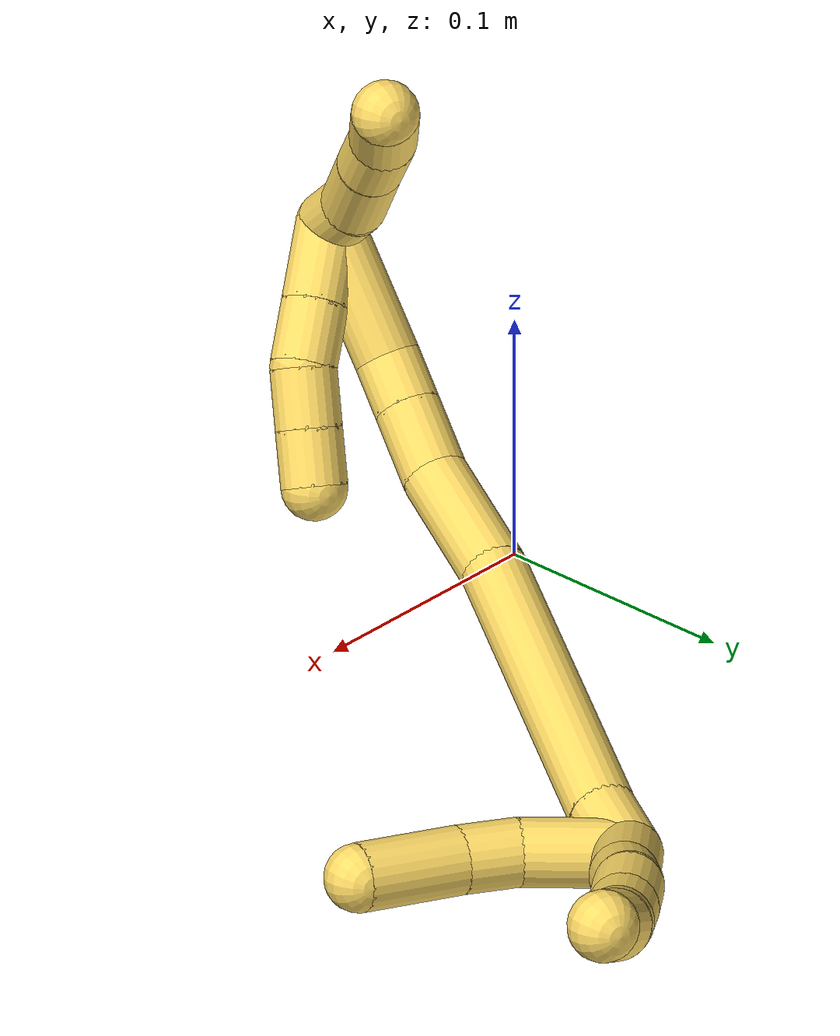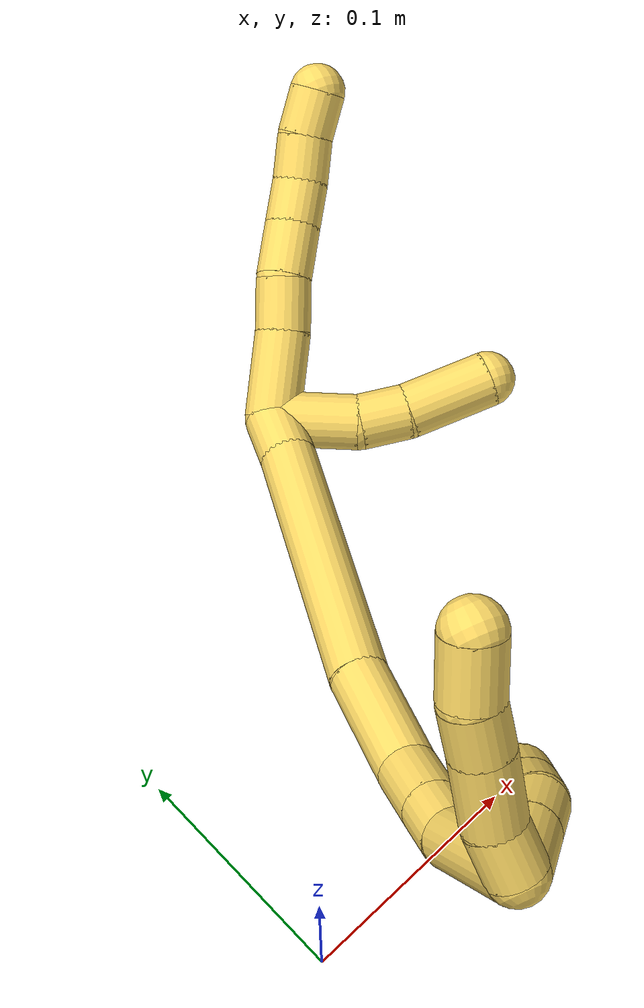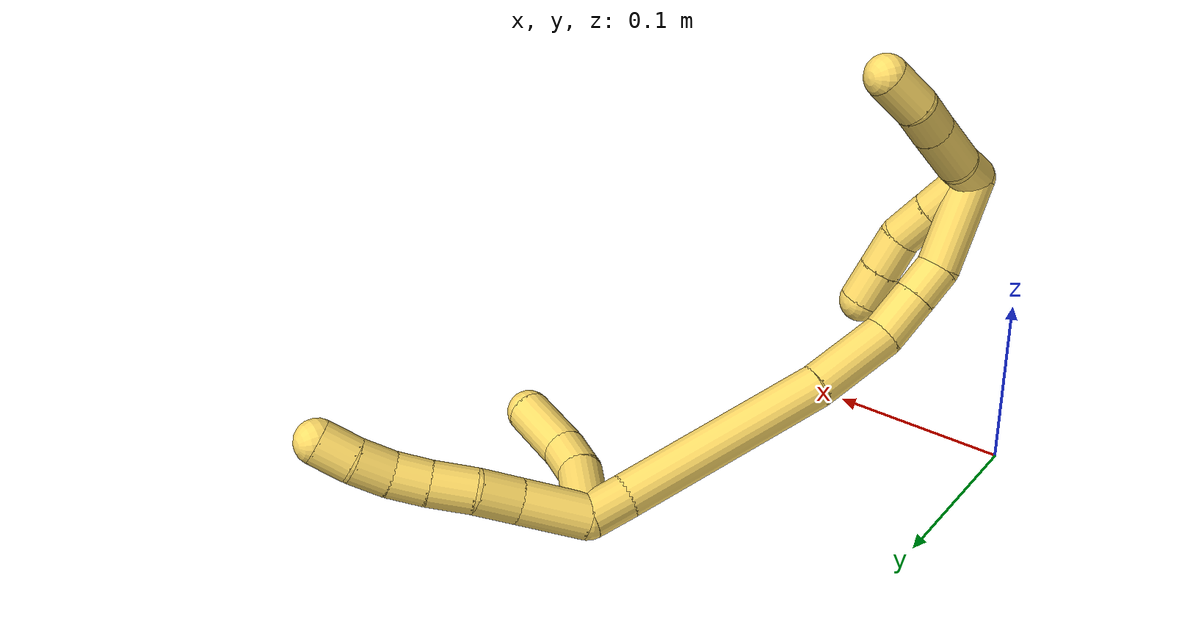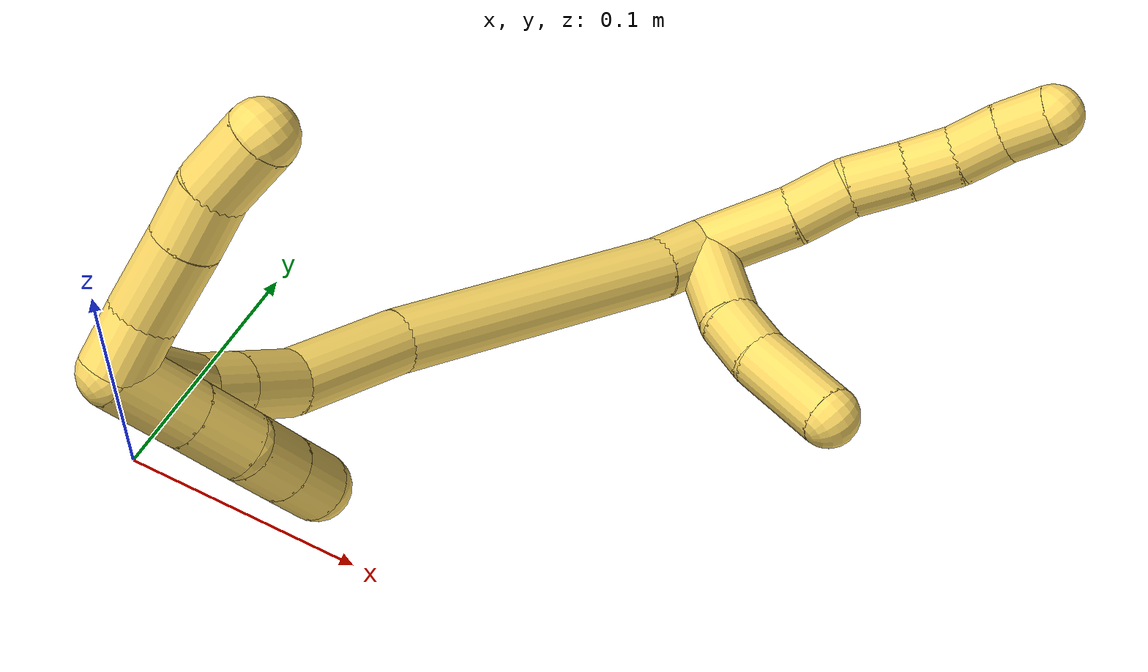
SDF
<sdf version="1.7">
 <world name="default">
  <model name="5">
   <static>0</static>
   <link name="5">
    <collision name="collision-cylinder-e_1_2_8">
     <pose>0.006579 -0.007897 0.016617 0.443655 0.343411 0.078183</pose>
     <geometry><cylinder><radius>0.0125</radius><length>0.039078</length></cylinder></geometry>
     <surface>
      <friction><ode><mu>1.16</mu><mu2>1.16</mu2><slip1>0</slip1><slip2>0</slip2></ode></friction>
      <contact><ode><kp>1e+06</kp><kd>1</kd><max_vel>0</max_vel><min_depth>0.001</min_depth></ode></contact>
     </surface>
    </collision>
    <visual name="visual-cylinder-e_1_2_8">
     <pose>0.006579 -0.007897 0.016617 0.443655 0.343411 0.078183</pose>
     <geometry><cylinder><radius>0.0125</radius><length>0.039078</length></cylinder></geometry>
     <material><ambient>1 0.858824 0.4 1</ambient></material>
    </visual>
    <collision name="collision-cylinder-e_2_8_9">
     <pose>0.015852 -0.020769 0.043942 0.434912 0.224362 0.049771</pose>
     <geometry><cylinder><radius>0.0125</radius><length>0.024221</length></cylinder></geometry>
     <surface>
      <friction><ode><mu>1.16</mu><mu2>1.16</mu2><slip1>0</slip1><slip2>0</slip2></ode></friction>
      <contact><ode><kp>1e+06</kp><kd>1</kd><max_vel>0</max_vel><min_depth>0.001</min_depth></ode></contact>
     </surface>
    </collision>
    <visual name="visual-cylinder-e_2_8_9">
     <pose>0.015852 -0.020769 0.043942 0.434912 0.224362 0.049771</pose>
     <geometry><cylinder><radius>0.0125</radius><length>0.024221</length></cylinder></geometry>
     <material><ambient>1 0.858824 0.4 1</ambient></material>
    </visual>
    <collision name="collision-cylinder-e_3_9_10">
     <pose>0.023726 -0.029932 0.064957 0.385948 0.435712 0.08646</pose>
     <geometry><cylinder><radius>0.0125</radius><length>0.024543</length></cylinder></geometry>
     <surface>
      <friction><ode><mu>1.16</mu><mu2>1.16</mu2><slip1>0</slip1><slip2>0</slip2></ode></friction>
      <contact><ode><kp>1e+06</kp><kd>1</kd><max_vel>0</max_vel><min_depth>0.001</min_depth></ode></contact>
     </surface>
    </collision>
    <visual name="visual-cylinder-e_3_9_10">
     <pose>0.023726 -0.029932 0.064957 0.385948 0.435712 0.08646</pose>
     <geometry><cylinder><radius>0.0125</radius><length>0.024543</length></cylinder></geometry>
     <material><ambient>1 0.858824 0.4 1</ambient></material>
    </visual>
    <collision name="collision-cylinder-e_4_10_11">
     <pose>0.032904 -0.03829 0.083727 0.457822 0.400925 0.094615</pose>
     <geometry><cylinder><radius>0.0125</radius><length>0.020495</length></cylinder></geometry>
     <surface>
      <friction><ode><mu>1.16</mu><mu2>1.16</mu2><slip1>0</slip1><slip2>0</slip2></ode></friction>
      <contact><ode><kp>1e+06</kp><kd>1</kd><max_vel>0</max_vel><min_depth>0.001</min_depth></ode></contact>
     </surface>
    </collision>
    <visual name="visual-cylinder-e_4_10_11">
     <pose>0.032904 -0.03829 0.083727 0.457822 0.400925 0.094615</pose>
     <geometry><cylinder><radius>0.0125</radius><length>0.020495</length></cylinder></geometry>
     <material><ambient>1 0.858824 0.4 1</ambient></material>
    </visual>
    <collision name="collision-cylinder-e_5_11_12">
     <pose>0.039365 -0.047948 0.100676 0.574058 0.238892 0.070824</pose>
     <geometry><cylinder><radius>0.0125</radius><length>0.020804</length></cylinder></geometry>
     <surface>
      <friction><ode><mu>1.16</mu><mu2>1.16</mu2><slip1>0</slip1><slip2>0</slip2></ode></friction>
      <contact><ode><kp>1e+06</kp><kd>1</kd><max_vel>0</max_vel><min_depth>0.001</min_depth></ode></contact>
     </surface>
    </collision>
    <visual name="visual-cylinder-e_5_11_12">
     <pose>0.039365 -0.047948 0.100676 0.574058 0.238892 0.070824</pose>
     <geometry><cylinder><radius>0.0125</radius><length>0.020804</length></cylinder></geometry>
     <material><ambient>1 0.858824 0.4 1</ambient></material>
    </visual>
    <collision name="collision-cylinder-e_6_12_6">
     <pose>0.045331 -0.059828 0.116622 0.708445 0.342742 0.127834</pose>
     <geometry><cylinder><radius>0.0125</radius><length>0.020859</length></cylinder></geometry>
     <surface>
      <friction><ode><mu>1.16</mu><mu2>1.16</mu2><slip1>0</slip1><slip2>0</slip2></ode></friction>
      <contact><ode><kp>1e+06</kp><kd>1</kd><max_vel>0</max_vel><min_depth>0.001</min_depth></ode></contact>
     </surface>
    </collision>
    <visual name="visual-cylinder-e_6_12_6">
     <pose>0.045331 -0.059828 0.116622 0.708445 0.342742 0.127834</pose>
     <geometry><cylinder><radius>0.0125</radius><length>0.020859</length></cylinder></geometry>
     <material><ambient>1 0.858824 0.4 1</ambient></material>
    </visual>
    <collision name="collision-cylinder-e_1_2_13">
     <pose>0.014362 -0.009641 -0.008705 2.30522 0.835551 1.56969</pose>
     <geometry><cylinder><radius>0.0125</radius><length>0.03873</length></cylinder></geometry>
     <surface>
      <friction><ode><mu>1.16</mu><mu2>1.16</mu2><slip1>0</slip1><slip2>0</slip2></ode></friction>
      <contact><ode><kp>1e+06</kp><kd>1</kd><max_vel>0</max_vel><min_depth>0.001</min_depth></ode></contact>
     </surface>
    </collision>
    <visual name="visual-cylinder-e_1_2_13">
     <pose>0.014362 -0.009641 -0.008705 2.30522 0.835551 1.56969</pose>
     <geometry><cylinder><radius>0.0125</radius><length>0.03873</length></cylinder></geometry>
     <material><ambient>1 0.858824 0.4 1</ambient></material>
    </visual>
    <collision name="collision-cylinder-e_2_13_14">
     <pose>0.038013 -0.024936 -0.01941 1.91079 0.997458 1.31284</pose>
     <geometry><cylinder><radius>0.0125</radius><length>0.022112</length></cylinder></geometry>
     <surface>
      <friction><ode><mu>1.16</mu><mu2>1.16</mu2><slip1>0</slip1><slip2>0</slip2></ode></friction>
      <contact><ode><kp>1e+06</kp><kd>1</kd><max_vel>0</max_vel><min_depth>0.001</min_depth></ode></contact>
     </surface>
    </collision>
    <visual name="visual-cylinder-e_2_13_14">
     <pose>0.038013 -0.024936 -0.01941 1.91079 0.997458 1.31284</pose>
     <geometry><cylinder><radius>0.0125</radius><length>0.022112</length></cylinder></geometry>
     <material><ambient>1 0.858824 0.4 1</ambient></material>
    </visual>
    <collision name="collision-cylinder-e_3_14_5">
     <pose>0.063778 -0.041157 -0.02182 1.60957 1.00021 1.03319</pose>
     <geometry><cylinder><radius>0.0125</radius><length>0.039158</length></cylinder></geometry>
     <surface>
      <friction><ode><mu>1.16</mu><mu2>1.16</mu2><slip1>0</slip1><slip2>0</slip2></ode></friction>
      <contact><ode><kp>1e+06</kp><kd>1</kd><max_vel>0</max_vel><min_depth>0.001</min_depth></ode></contact>
     </surface>
    </collision>
    <visual name="visual-cylinder-e_3_14_5">
     <pose>0.063778 -0.041157 -0.02182 1.60957 1.00021 1.03319</pose>
     <geometry><cylinder><radius>0.0125</radius><length>0.039158</length></cylinder></geometry>
     <material><ambient>1 0.858824 0.4 1</ambient></material>
    </visual>
    <collision name="collision-cylinder-e_1_2_15">
     <pose>-0.002846 -0.003239 -0.010925 2.85339 -0.24475 -1.40618</pose>
     <geometry><cylinder><radius>0.0125</radius><length>0.02349</length></cylinder></geometry>
     <surface>
      <friction><ode><mu>1.16</mu><mu2>1.16</mu2><slip1>0</slip1><slip2>0</slip2></ode></friction>
      <contact><ode><kp>1e+06</kp><kd>1</kd><max_vel>0</max_vel><min_depth>0.001</min_depth></ode></contact>
     </surface>
    </collision>
    <visual name="visual-cylinder-e_1_2_15">
     <pose>-0.002846 -0.003239 -0.010925 2.85339 -0.24475 -1.40618</pose>
     <geometry><cylinder><radius>0.0125</radius><length>0.02349</length></cylinder></geometry>
     <material><ambient>1 0.858824 0.4 1</ambient></material>
    </visual>
    <collision name="collision-cylinder-e_2_15_16">
     <pose>-0.026225 -0.025959 -0.076352 2.79831 -0.340904 -1.56369</pose>
     <geometry><cylinder><radius>0.0125</radius><length>0.122826</length></cylinder></geometry>
     <surface>
      <friction><ode><mu>1.16</mu><mu2>1.16</mu2><slip1>0</slip1><slip2>0</slip2></ode></friction>
      <contact><ode><kp>1e+06</kp><kd>1</kd><max_vel>0</max_vel><min_depth>0.001</min_depth></ode></contact>
     </surface>
    </collision>
    <visual name="visual-cylinder-e_2_15_16">
     <pose>-0.026225 -0.025959 -0.076352 2.79831 -0.340904 -1.56369</pose>
     <geometry><cylinder><radius>0.0125</radius><length>0.122826</length></cylinder></geometry>
     <material><ambient>1 0.858824 0.4 1</ambient></material>
    </visual>
    <collision name="collision-cylinder-e_3_16_17">
     <pose>-0.052472 -0.055629 -0.152861 2.70798 -0.231418 -0.971065</pose>
     <geometry><cylinder><radius>0.0125</radius><length>0.049831</length></cylinder></geometry>
     <surface>
      <friction><ode><mu>1.16</mu><mu2>1.16</mu2><slip1>0</slip1><slip2>0</slip2></ode></friction>
      <contact><ode><kp>1e+06</kp><kd>1</kd><max_vel>0</max_vel><min_depth>0.001</min_depth></ode></contact>
     </surface>
    </collision>
    <visual name="visual-cylinder-e_3_16_17">
     <pose>-0.052472 -0.055629 -0.152861 2.70798 -0.231418 -0.971065</pose>
     <geometry><cylinder><radius>0.0125</radius><length>0.049831</length></cylinder></geometry>
     <material><ambient>1 0.858824 0.4 1</ambient></material>
    </visual>
    <collision name="collision-cylinder-e_4_17_18">
     <pose>-0.063163 -0.075036 -0.184337 2.36962 -0.360165 -0.842382</pose>
     <geometry><cylinder><radius>0.0125</radius><length>0.028239</length></cylinder></geometry>
     <surface>
      <friction><ode><mu>1.16</mu><mu2>1.16</mu2><slip1>0</slip1><slip2>0</slip2></ode></friction>
      <contact><ode><kp>1e+06</kp><kd>1</kd><max_vel>0</max_vel><min_depth>0.001</min_depth></ode></contact>
     </surface>
    </collision>
    <visual name="visual-cylinder-e_4_17_18">
     <pose>-0.063163 -0.075036 -0.184337 2.36962 -0.360165 -0.842382</pose>
     <geometry><cylinder><radius>0.0125</radius><length>0.028239</length></cylinder></geometry>
     <material><ambient>1 0.858824 0.4 1</ambient></material>
    </visual>
    <collision name="collision-cylinder-e_5_18_19">
     <pose>-0.071841 -0.091235 -0.200808 2.35773 -0.358225 -0.825748</pose>
     <geometry><cylinder><radius>0.0125</radius><length>0.021118</length></cylinder></geometry>
     <surface>
      <friction><ode><mu>1.16</mu><mu2>1.16</mu2><slip1>0</slip1><slip2>0</slip2></ode></friction>
      <contact><ode><kp>1e+06</kp><kd>1</kd><max_vel>0</max_vel><min_depth>0.001</min_depth></ode></contact>
     </surface>
    </collision>
    <visual name="visual-cylinder-e_5_18_19">
     <pose>-0.071841 -0.091235 -0.200808 2.35773 -0.358225 -0.825748</pose>
     <geometry><cylinder><radius>0.0125</radius><length>0.021118</length></cylinder></geometry>
     <material><ambient>1 0.858824 0.4 1</ambient></material>
    </visual>
    <collision name="collision-cylinder-e_6_19_1">
     <pose>-0.083249 -0.121845 -0.218979 2.01233 -0.28671 -0.448112</pose>
     <geometry><cylinder><radius>0.0125</radius><length>0.054494</length></cylinder></geometry>
     <surface>
      <friction><ode><mu>1.16</mu><mu2>1.16</mu2><slip1>0</slip1><slip2>0</slip2></ode></friction>
      <contact><ode><kp>1e+06</kp><kd>1</kd><max_vel>0</max_vel><min_depth>0.001</min_depth></ode></contact>
     </surface>
    </collision>
    <visual name="visual-cylinder-e_6_19_1">
     <pose>-0.083249 -0.121845 -0.218979 2.01233 -0.28671 -0.448112</pose>
     <geometry><cylinder><radius>0.0125</radius><length>0.054494</length></cylinder></geometry>
     <material><ambient>1 0.858824 0.4 1</ambient></material>
    </visual>
    <collision name="collision-cylinder-e_1_1_20">
     <pose>-0.094593 -0.150171 -0.221178 0.482412 -0.345014 -0.085671</pose>
     <geometry><cylinder><radius>0.0125</radius><length>0.021518</length></cylinder></geometry>
     <surface>
      <friction><ode><mu>1.16</mu><mu2>1.16</mu2><slip1>0</slip1><slip2>0</slip2></ode></friction>
      <contact><ode><kp>1e+06</kp><kd>1</kd><max_vel>0</max_vel><min_depth>0.001</min_depth></ode></contact>
     </surface>
    </collision>
    <visual name="visual-cylinder-e_1_1_20">
     <pose>-0.094593 -0.150171 -0.221178 0.482412 -0.345014 -0.085671</pose>
     <geometry><cylinder><radius>0.0125</radius><length>0.021518</length></cylinder></geometry>
     <material><ambient>1 0.858824 0.4 1</ambient></material>
    </visual>
    <collision name="collision-cylinder-e_2_20_21">
     <pose>-0.102016 -0.164956 -0.200844 0.725983 -0.244062 -0.093096</pose>
     <geometry><cylinder><radius>0.0125</radius><length>0.03132</length></cylinder></geometry>
     <surface>
      <friction><ode><mu>1.16</mu><mu2>1.16</mu2><slip1>0</slip1><slip2>0</slip2></ode></friction>
      <contact><ode><kp>1e+06</kp><kd>1</kd><max_vel>0</max_vel><min_depth>0.001</min_depth></ode></contact>
     </surface>
    </collision>
    <visual name="visual-cylinder-e_2_20_21">
     <pose>-0.102016 -0.164956 -0.200844 0.725983 -0.244062 -0.093096</pose>
     <geometry><cylinder><radius>0.0125</radius><length>0.03132</length></cylinder></geometry>
     <material><ambient>1 0.858824 0.4 1</ambient></material>
    </visual>
    <collision name="collision-cylinder-e_3_21_22">
     <pose>-0.108705 -0.181763 -0.181836 0.721057 -0.277988 -0.105386</pose>
     <geometry><cylinder><radius>0.0125</radius><length>0.021165</length></cylinder></geometry>
     <surface>
      <friction><ode><mu>1.16</mu><mu2>1.16</mu2><slip1>0</slip1><slip2>0</slip2></ode></friction>
      <contact><ode><kp>1e+06</kp><kd>1</kd><max_vel>0</max_vel><min_depth>0.001</min_depth></ode></contact>
     </surface>
    </collision>
    <visual name="visual-cylinder-e_3_21_22">
     <pose>-0.108705 -0.181763 -0.181836 0.721057 -0.277988 -0.105386</pose>
     <geometry><cylinder><radius>0.0125</radius><length>0.021165</length></cylinder></geometry>
     <material><ambient>1 0.858824 0.4 1</ambient></material>
    </visual>
    <collision name="collision-cylinder-e_4_22_4">
     <pose>-0.112144 -0.197337 -0.164693 0.750368 -0.041208 -0.016231</pose>
     <geometry><cylinder><radius>0.0125</radius><length>0.025996</length></cylinder></geometry>
     <surface>
      <friction><ode><mu>1.16</mu><mu2>1.16</mu2><slip1>0</slip1><slip2>0</slip2></ode></friction>
      <contact><ode><kp>1e+06</kp><kd>1</kd><max_vel>0</max_vel><min_depth>0.001</min_depth></ode></contact>
     </surface>
    </collision>
    <visual name="visual-cylinder-e_4_22_4">
     <pose>-0.112144 -0.197337 -0.164693 0.750368 -0.041208 -0.016231</pose>
     <geometry><cylinder><radius>0.0125</radius><length>0.025996</length></cylinder></geometry>
     <material><ambient>1 0.858824 0.4 1</ambient></material>
    </visual>
    <collision name="collision-cylinder-e_1_1_23">
     <pose>-0.078665 -0.137588 -0.224195 -0.924219 0.893661 -0.468546</pose>
     <geometry><cylinder><radius>0.0125</radius><length>0.031536</length></cylinder></geometry>
     <surface>
      <friction><ode><mu>1.16</mu><mu2>1.16</mu2><slip1>0</slip1><slip2>0</slip2></ode></friction>
      <contact><ode><kp>1e+06</kp><kd>1</kd><max_vel>0</max_vel><min_depth>0.001</min_depth></ode></contact>
     </surface>
    </collision>
    <visual name="visual-cylinder-e_1_1_23">
     <pose>-0.078665 -0.137588 -0.224195 -0.924219 0.893661 -0.468546</pose>
     <geometry><cylinder><radius>0.0125</radius><length>0.031536</length></cylinder></geometry>
     <material><ambient>1 0.858824 0.4 1</ambient></material>
    </visual>
    <collision name="collision-cylinder-e_2_23_24">
     <pose>-0.056958 -0.123652 -0.213755 -0.932566 0.89616 -0.474738</pose>
     <geometry><cylinder><radius>0.0125</radius><length>0.024121</length></cylinder></geometry>
     <surface>
      <friction><ode><mu>1.16</mu><mu2>1.16</mu2><slip1>0</slip1><slip2>0</slip2></ode></friction>
      <contact><ode><kp>1e+06</kp><kd>1</kd><max_vel>0</max_vel><min_depth>0.001</min_depth></ode></contact>
     </surface>
    </collision>
    <visual name="visual-cylinder-e_2_23_24">
     <pose>-0.056958 -0.123652 -0.213755 -0.932566 0.89616 -0.474738</pose>
     <geometry><cylinder><radius>0.0125</radius><length>0.024121</length></cylinder></geometry>
     <material><ambient>1 0.858824 0.4 1</ambient></material>
    </visual>
    <collision name="collision-cylinder-e_3_24_25">
     <pose>-0.041071 -0.109018 -0.205474 -1.15472 0.603431 -0.400032</pose>
     <geometry><cylinder><radius>0.0125</radius><length>0.022796</length></cylinder></geometry>
     <surface>
      <friction><ode><mu>1.16</mu><mu2>1.16</mu2><slip1>0</slip1><slip2>0</slip2></ode></friction>
      <contact><ode><kp>1e+06</kp><kd>1</kd><max_vel>0</max_vel><min_depth>0.001</min_depth></ode></contact>
     </surface>
    </collision>
    <visual name="visual-cylinder-e_3_24_25">
     <pose>-0.041071 -0.109018 -0.205474 -1.15472 0.603431 -0.400032</pose>
     <geometry><cylinder><radius>0.0125</radius><length>0.022796</length></cylinder></geometry>
     <material><ambient>1 0.858824 0.4 1</ambient></material>
    </visual>
    <collision name="collision-cylinder-e_4_25_3">
     <pose>-0.028511 -0.092332 -0.198031 -1.14753 0.600999 -0.395323</pose>
     <geometry><cylinder><radius>0.0125</radius><length>0.021547</length></cylinder></geometry>
     <surface>
      <friction><ode><mu>1.16</mu><mu2>1.16</mu2><slip1>0</slip1><slip2>0</slip2></ode></friction>
      <contact><ode><kp>1e+06</kp><kd>1</kd><max_vel>0</max_vel><min_depth>0.001</min_depth></ode></contact>
     </surface>
    </collision>
    <visual name="visual-cylinder-e_4_25_3">
     <pose>-0.028511 -0.092332 -0.198031 -1.14753 0.600999 -0.395323</pose>
     <geometry><cylinder><radius>0.0125</radius><length>0.021547</length></cylinder></geometry>
     <material><ambient>1 0.858824 0.4 1</ambient></material>
    </visual>
    <collision name="collision-sphere-3">
     <pose>-0.022419 -0.08423 -0.194381 0 -0 0</pose>
     <geometry><sphere><radius>0.0125</radius></sphere></geometry>
     <surface>
      <friction><ode><mu>1.16</mu><mu2>1.16</mu2><slip1>0</slip1><slip2>0</slip2></ode></friction>
      <contact><ode><kp>1e+06</kp><kd>1</kd><max_vel>0</max_vel><min_depth>0.001</min_depth></ode></contact>
     </surface>
    </collision>
    <visual name="visual-sphere-3">
     <pose>-0.022419 -0.08423 -0.194381 0 -0 0</pose>
     <geometry><sphere><radius>0.0125</radius></sphere></geometry>
     <material><ambient>1 0.858824 0.4 1</ambient></material>
    </visual>
    <collision name="collision-sphere-25">
     <pose>-0.034603 -0.100433 -0.201681 0 -0 0</pose>
     <geometry><sphere><radius>0.0125</radius></sphere></geometry>
     <surface>
      <friction><ode><mu>1.16</mu><mu2>1.16</mu2><slip1>0</slip1><slip2>0</slip2></ode></friction>
      <contact><ode><kp>1e+06</kp><kd>1</kd><max_vel>0</max_vel><min_depth>0.001</min_depth></ode></contact>
     </surface>
    </collision>
    <visual name="visual-sphere-25">
     <pose>-0.034603 -0.100433 -0.201681 0 -0 0</pose>
     <geometry><sphere><radius>0.0125</radius></sphere></geometry>
     <material><ambient>1 0.858824 0.4 1</ambient></material>
    </visual>
    <collision name="collision-sphere-24">
     <pose>-0.047539 -0.117602 -0.209267 0 -0 0</pose>
     <geometry><sphere><radius>0.0125</radius></sphere></geometry>
     <surface>
      <friction><ode><mu>1.16</mu><mu2>1.16</mu2><slip1>0</slip1><slip2>0</slip2></ode></friction>
      <contact><ode><kp>1e+06</kp><kd>1</kd><max_vel>0</max_vel><min_depth>0.001</min_depth></ode></contact>
     </surface>
    </collision>
    <visual name="visual-sphere-24">
     <pose>-0.047539 -0.117602 -0.209267 0 -0 0</pose>
     <geometry><sphere><radius>0.0125</radius></sphere></geometry>
     <material><ambient>1 0.858824 0.4 1</ambient></material>
    </visual>
    <collision name="collision-sphere-23">
     <pose>-0.066376 -0.129703 -0.218243 0 -0 0</pose>
     <geometry><sphere><radius>0.0125</radius></sphere></geometry>
     <surface>
      <friction><ode><mu>1.16</mu><mu2>1.16</mu2><slip1>0</slip1><slip2>0</slip2></ode></friction>
      <contact><ode><kp>1e+06</kp><kd>1</kd><max_vel>0</max_vel><min_depth>0.001</min_depth></ode></contact>
     </surface>
    </collision>
    <visual name="visual-sphere-23">
     <pose>-0.066376 -0.129703 -0.218243 0 -0 0</pose>
     <geometry><sphere><radius>0.0125</radius></sphere></geometry>
     <material><ambient>1 0.858824 0.4 1</ambient></material>
    </visual>
    <collision name="collision-sphere-4">
     <pose>-0.11268 -0.206193 -0.155194 0 -0 0</pose>
     <geometry><sphere><radius>0.0125</radius></sphere></geometry>
     <surface>
      <friction><ode><mu>1.16</mu><mu2>1.16</mu2><slip1>0</slip1><slip2>0</slip2></ode></friction>
      <contact><ode><kp>1e+06</kp><kd>1</kd><max_vel>0</max_vel><min_depth>0.001</min_depth></ode></contact>
     </surface>
    </collision>
    <visual name="visual-sphere-4">
     <pose>-0.11268 -0.206193 -0.155194 0 -0 0</pose>
     <geometry><sphere><radius>0.0125</radius></sphere></geometry>
     <material><ambient>1 0.858824 0.4 1</ambient></material>
    </visual>
    <collision name="collision-sphere-22">
     <pose>-0.111609 -0.188481 -0.174193 0 -0 0</pose>
     <geometry><sphere><radius>0.0125</radius></sphere></geometry>
     <surface>
      <friction><ode><mu>1.16</mu><mu2>1.16</mu2><slip1>0</slip1><slip2>0</slip2></ode></friction>
      <contact><ode><kp>1e+06</kp><kd>1</kd><max_vel>0</max_vel><min_depth>0.001</min_depth></ode></contact>
     </surface>
    </collision>
    <visual name="visual-sphere-22">
     <pose>-0.111609 -0.188481 -0.174193 0 -0 0</pose>
     <geometry><sphere><radius>0.0125</radius></sphere></geometry>
     <material><ambient>1 0.858824 0.4 1</ambient></material>
    </visual>
    <collision name="collision-sphere-21">
     <pose>-0.1058 -0.175044 -0.18948 0 -0 0</pose>
     <geometry><sphere><radius>0.0125</radius></sphere></geometry>
     <surface>
      <friction><ode><mu>1.16</mu><mu2>1.16</mu2><slip1>0</slip1><slip2>0</slip2></ode></friction>
      <contact><ode><kp>1e+06</kp><kd>1</kd><max_vel>0</max_vel><min_depth>0.001</min_depth></ode></contact>
     </surface>
    </collision>
    <visual name="visual-sphere-21">
     <pose>-0.1058 -0.175044 -0.18948 0 -0 0</pose>
     <geometry><sphere><radius>0.0125</radius></sphere></geometry>
     <material><ambient>1 0.858824 0.4 1</ambient></material>
    </visual>
    <collision name="collision-sphere-20">
     <pose>-0.098232 -0.154868 -0.212208 0 -0 0</pose>
     <geometry><sphere><radius>0.0125</radius></sphere></geometry>
     <surface>
      <friction><ode><mu>1.16</mu><mu2>1.16</mu2><slip1>0</slip1><slip2>0</slip2></ode></friction>
      <contact><ode><kp>1e+06</kp><kd>1</kd><max_vel>0</max_vel><min_depth>0.001</min_depth></ode></contact>
     </surface>
    </collision>
    <visual name="visual-sphere-20">
     <pose>-0.098232 -0.154868 -0.212208 0 -0 0</pose>
     <geometry><sphere><radius>0.0125</radius></sphere></geometry>
     <material><ambient>1 0.858824 0.4 1</ambient></material>
    </visual>
    <collision name="collision-sphere-12">
     <pose>0.041826 -0.053437 0.109163 0 -0 0</pose>
     <geometry><sphere><radius>0.0125</radius></sphere></geometry>
     <surface>
      <friction><ode><mu>1.16</mu><mu2>1.16</mu2><slip1>0</slip1><slip2>0</slip2></ode></friction>
      <contact><ode><kp>1e+06</kp><kd>1</kd><max_vel>0</max_vel><min_depth>0.001</min_depth></ode></contact>
     </surface>
    </collision>
    <visual name="visual-sphere-12">
     <pose>0.041826 -0.053437 0.109163 0 -0 0</pose>
     <geometry><sphere><radius>0.0125</radius></sphere></geometry>
     <material><ambient>1 0.858824 0.4 1</ambient></material>
    </visual>
    <collision name="collision-sphere-11">
     <pose>0.036904 -0.04246 0.09219 0 -0 0</pose>
     <geometry><sphere><radius>0.0125</radius></sphere></geometry>
     <surface>
      <friction><ode><mu>1.16</mu><mu2>1.16</mu2><slip1>0</slip1><slip2>0</slip2></ode></friction>
      <contact><ode><kp>1e+06</kp><kd>1</kd><max_vel>0</max_vel><min_depth>0.001</min_depth></ode></contact>
     </surface>
    </collision>
    <visual name="visual-sphere-11">
     <pose>0.036904 -0.04246 0.09219 0 -0 0</pose>
     <geometry><sphere><radius>0.0125</radius></sphere></geometry>
     <material><ambient>1 0.858824 0.4 1</ambient></material>
    </visual>
    <collision name="collision-sphere-10">
     <pose>0.028905 -0.03412 0.075263 0 -0 0</pose>
     <geometry><sphere><radius>0.0125</radius></sphere></geometry>
     <surface>
      <friction><ode><mu>1.16</mu><mu2>1.16</mu2><slip1>0</slip1><slip2>0</slip2></ode></friction>
      <contact><ode><kp>1e+06</kp><kd>1</kd><max_vel>0</max_vel><min_depth>0.001</min_depth></ode></contact>
     </surface>
    </collision>
    <visual name="visual-sphere-10">
     <pose>0.028905 -0.03412 0.075263 0 -0 0</pose>
     <geometry><sphere><radius>0.0125</radius></sphere></geometry>
     <material><ambient>1 0.858824 0.4 1</ambient></material>
    </visual>
    <collision name="collision-sphere-9">
     <pose>0.018546 -0.025744 0.05465 0 -0 0</pose>
     <geometry><sphere><radius>0.0125</radius></sphere></geometry>
     <surface>
      <friction><ode><mu>1.16</mu><mu2>1.16</mu2><slip1>0</slip1><slip2>0</slip2></ode></friction>
      <contact><ode><kp>1e+06</kp><kd>1</kd><max_vel>0</max_vel><min_depth>0.001</min_depth></ode></contact>
     </surface>
    </collision>
    <visual name="visual-sphere-9">
     <pose>0.018546 -0.025744 0.05465 0 -0 0</pose>
     <geometry><sphere><radius>0.0125</radius></sphere></geometry>
     <material><ambient>1 0.858824 0.4 1</ambient></material>
    </visual>
    <collision name="collision-sphere-2">
     <geometry><sphere><radius>0.0125</radius></sphere></geometry>
     <surface>
      <friction><ode><mu>1.16</mu><mu2>1.16</mu2><slip1>0</slip1><slip2>0</slip2></ode></friction>
      <contact><ode><kp>1e+06</kp><kd>1</kd><max_vel>0</max_vel><min_depth>0.001</min_depth></ode></contact>
     </surface>
    </collision>
    <visual name="visual-sphere-2">
     <geometry><sphere><radius>0.0125</radius></sphere></geometry>
     <material><ambient>1 0.858824 0.4 1</ambient></material>
    </visual>
    <collision name="collision-sphere-19">
     <pose>-0.075544 -0.098216 -0.207811 0 -0 0</pose>
     <geometry><sphere><radius>0.0125</radius></sphere></geometry>
     <surface>
      <friction><ode><mu>1.16</mu><mu2>1.16</mu2><slip1>0</slip1><slip2>0</slip2></ode></friction>
      <contact><ode><kp>1e+06</kp><kd>1</kd><max_vel>0</max_vel><min_depth>0.001</min_depth></ode></contact>
     </surface>
    </collision>
    <visual name="visual-sphere-19">
     <pose>-0.075544 -0.098216 -0.207811 0 -0 0</pose>
     <geometry><sphere><radius>0.0125</radius></sphere></geometry>
     <material><ambient>1 0.858824 0.4 1</ambient></material>
    </visual>
    <collision name="collision-sphere-8">
     <pose>0.013157 -0.015794 0.033234 0 -0 0</pose>
     <geometry><sphere><radius>0.0125</radius></sphere></geometry>
     <surface>
      <friction><ode><mu>1.16</mu><mu2>1.16</mu2><slip1>0</slip1><slip2>0</slip2></ode></friction>
      <contact><ode><kp>1e+06</kp><kd>1</kd><max_vel>0</max_vel><min_depth>0.001</min_depth></ode></contact>
     </surface>
    </collision>
    <visual name="visual-sphere-8">
     <pose>0.013157 -0.015794 0.033234 0 -0 0</pose>
     <geometry><sphere><radius>0.0125</radius></sphere></geometry>
     <material><ambient>1 0.858824 0.4 1</ambient></material>
    </visual>
    <collision name="collision-sphere-6">
     <pose>0.048836 -0.066219 0.124081 0 -0 0</pose>
     <geometry><sphere><radius>0.0125</radius></sphere></geometry>
     <surface>
      <friction><ode><mu>1.16</mu><mu2>1.16</mu2><slip1>0</slip1><slip2>0</slip2></ode></friction>
      <contact><ode><kp>1e+06</kp><kd>1</kd><max_vel>0</max_vel><min_depth>0.001</min_depth></ode></contact>
     </surface>
    </collision>
    <visual name="visual-sphere-6">
     <pose>0.048836 -0.066219 0.124081 0 -0 0</pose>
     <geometry><sphere><radius>0.0125</radius></sphere></geometry>
     <material><ambient>1 0.858824 0.4 1</ambient></material>
    </visual>
    <collision name="collision-sphere-13">
     <pose>0.028725 -0.019282 -0.01741 0 -0 0</pose>
     <geometry><sphere><radius>0.0125</radius></sphere></geometry>
     <surface>
      <friction><ode><mu>1.16</mu><mu2>1.16</mu2><slip1>0</slip1><slip2>0</slip2></ode></friction>
      <contact><ode><kp>1e+06</kp><kd>1</kd><max_vel>0</max_vel><min_depth>0.001</min_depth></ode></contact>
     </surface>
    </collision>
    <visual name="visual-sphere-13">
     <pose>0.028725 -0.019282 -0.01741 0 -0 0</pose>
     <geometry><sphere><radius>0.0125</radius></sphere></geometry>
     <material><ambient>1 0.858824 0.4 1</ambient></material>
    </visual>
    <collision name="collision-sphere-14">
     <pose>0.047301 -0.03059 -0.02141 0 -0 0</pose>
     <geometry><sphere><radius>0.0125</radius></sphere></geometry>
     <surface>
      <friction><ode><mu>1.16</mu><mu2>1.16</mu2><slip1>0</slip1><slip2>0</slip2></ode></friction>
      <contact><ode><kp>1e+06</kp><kd>1</kd><max_vel>0</max_vel><min_depth>0.001</min_depth></ode></contact>
     </surface>
    </collision>
    <visual name="visual-sphere-14">
     <pose>0.047301 -0.03059 -0.02141 0 -0 0</pose>
     <geometry><sphere><radius>0.0125</radius></sphere></geometry>
     <material><ambient>1 0.858824 0.4 1</ambient></material>
    </visual>
    <collision name="collision-sphere-5">
     <pose>0.080256 -0.051724 -0.02223 0 -0 0</pose>
     <geometry><sphere><radius>0.0125</radius></sphere></geometry>
     <surface>
      <friction><ode><mu>1.16</mu><mu2>1.16</mu2><slip1>0</slip1><slip2>0</slip2></ode></friction>
      <contact><ode><kp>1e+06</kp><kd>1</kd><max_vel>0</max_vel><min_depth>0.001</min_depth></ode></contact>
     </surface>
    </collision>
    <visual name="visual-sphere-5">
     <pose>0.080256 -0.051724 -0.02223 0 -0 0</pose>
     <geometry><sphere><radius>0.0125</radius></sphere></geometry>
     <material><ambient>1 0.858824 0.4 1</ambient></material>
    </visual>
    <collision name="collision-sphere-15">
     <pose>-0.005692 -0.006478 -0.02185 0 -0 0</pose>
     <geometry><sphere><radius>0.0125</radius></sphere></geometry>
     <surface>
      <friction><ode><mu>1.16</mu><mu2>1.16</mu2><slip1>0</slip1><slip2>0</slip2></ode></friction>
      <contact><ode><kp>1e+06</kp><kd>1</kd><max_vel>0</max_vel><min_depth>0.001</min_depth></ode></contact>
     </surface>
    </collision>
    <visual name="visual-sphere-15">
     <pose>-0.005692 -0.006478 -0.02185 0 -0 0</pose>
     <geometry><sphere><radius>0.0125</radius></sphere></geometry>
     <material><ambient>1 0.858824 0.4 1</ambient></material>
    </visual>
    <collision name="collision-sphere-16">
     <pose>-0.046758 -0.04544 -0.130854 0 -0 0</pose>
     <geometry><sphere><radius>0.0125</radius></sphere></geometry>
     <surface>
      <friction><ode><mu>1.16</mu><mu2>1.16</mu2><slip1>0</slip1><slip2>0</slip2></ode></friction>
      <contact><ode><kp>1e+06</kp><kd>1</kd><max_vel>0</max_vel><min_depth>0.001</min_depth></ode></contact>
     </surface>
    </collision>
    <visual name="visual-sphere-16">
     <pose>-0.046758 -0.04544 -0.130854 0 -0 0</pose>
     <geometry><sphere><radius>0.0125</radius></sphere></geometry>
     <material><ambient>1 0.858824 0.4 1</ambient></material>
    </visual>
    <collision name="collision-sphere-17">
     <pose>-0.058187 -0.065819 -0.174868 0 -0 0</pose>
     <geometry><sphere><radius>0.0125</radius></sphere></geometry>
     <surface>
      <friction><ode><mu>1.16</mu><mu2>1.16</mu2><slip1>0</slip1><slip2>0</slip2></ode></friction>
      <contact><ode><kp>1e+06</kp><kd>1</kd><max_vel>0</max_vel><min_depth>0.001</min_depth></ode></contact>
     </surface>
    </collision>
    <visual name="visual-sphere-17">
     <pose>-0.058187 -0.065819 -0.174868 0 -0 0</pose>
     <geometry><sphere><radius>0.0125</radius></sphere></geometry>
     <material><ambient>1 0.858824 0.4 1</ambient></material>
    </visual>
    <collision name="collision-sphere-18">
     <pose>-0.068139 -0.084253 -0.193805 0 -0 0</pose>
     <geometry><sphere><radius>0.0125</radius></sphere></geometry>
     <surface>
      <friction><ode><mu>1.16</mu><mu2>1.16</mu2><slip1>0</slip1><slip2>0</slip2></ode></friction>
      <contact><ode><kp>1e+06</kp><kd>1</kd><max_vel>0</max_vel><min_depth>0.001</min_depth></ode></contact>
     </surface>
    </collision>
    <visual name="visual-sphere-18">
     <pose>-0.068139 -0.084253 -0.193805 0 -0 0</pose>
     <geometry><sphere><radius>0.0125</radius></sphere></geometry>
     <material><ambient>1 0.858824 0.4 1</ambient></material>
    </visual>
    <collision name="collision-sphere-1">
     <pose>-0.090954 -0.145474 -0.230147 0 -0 0</pose>
     <geometry><sphere><radius>0.0125</radius></sphere></geometry>
     <surface>
      <friction><ode><mu>1.16</mu><mu2>1.16</mu2><slip1>0</slip1><slip2>0</slip2></ode></friction>
      <contact><ode><kp>1e+06</kp><kd>1</kd><max_vel>0</max_vel><min_depth>0.001</min_depth></ode></contact>
     </surface>
    </collision>
    <visual name="visual-sphere-1">
     <pose>-0.090954 -0.145474 -0.230147 0 -0 0</pose>
     <geometry><sphere><radius>0.0125</radius></sphere></geometry>
     <material><ambient>1 0.858824 0.4 1</ambient></material>
    </visual>
    <inertial>
     <pose>-0.029381 -0.070675 -0.094744 0 -0 0</pose>
     <mass>0.75</mass>
     <inertia>
      <ixx>-0.000103</ixx>
      <ixy>0</ixy>
      <ixz>0</ixz>
      <iyy>-0.000143</iyy>
      <iyz>0</iyz>
      <izz>0.000127</izz>
     </inertia>
    </inertial>
   </link>
   <pose>0.148868 0.189284 0.012815 -1.38656 0.476447 -0.257728</pose>
  </model>
 </world>
</sdf>
